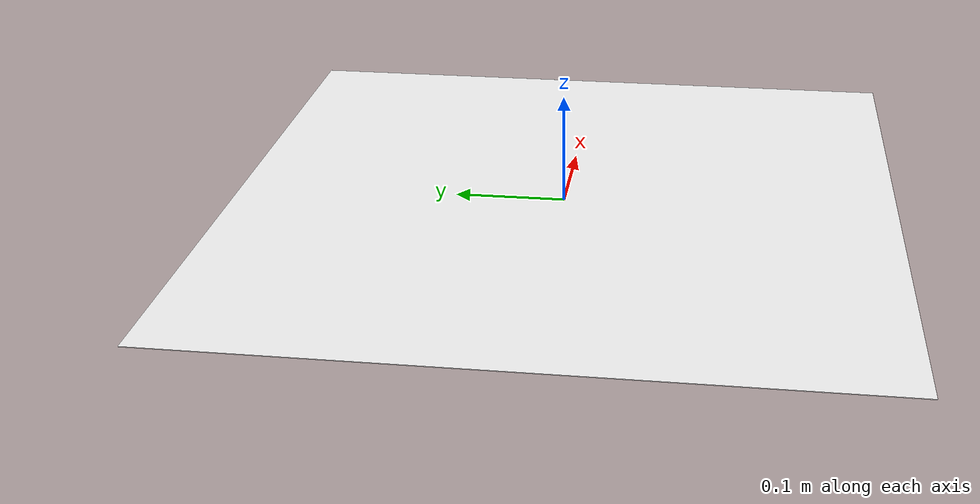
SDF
<?xml version='1.0'?>
<sdf version='1.9'>
  <model name='apriltag_landing_pad_2'>
    <static>true</static>
    <link name='pad_link'>
      <visual name='pad_visual'>
        <pose>0 0 0.003 0 0 0</pose>
        <geometry>
          <plane>
            <normal>0 0 1</normal>
            <size>0.6 0.6</size>
          </plane>
        </geometry>
        <material>
          <ambient>1 1 1 1</ambient>
          <diffuse>1 1 1 1</diffuse>
          <specular>0 0 0 1</specular>
          <pbr>
            <metal>
              <albedo_map>model://apriltag_landing_pad_2/materials/textures/tag36h11_id2.png</albedo_map>
              <roughness>1.0</roughness>
              <metalness>0.0</metalness>
            </metal>
          </pbr>
        </material>
      </visual>
      <collision name='pad_collision'>
        <geometry>
          <box><size>0.6 0.6 0.005</size></box>
        </geometry>
      </collision>
    </link>
  </model>
</sdf>
